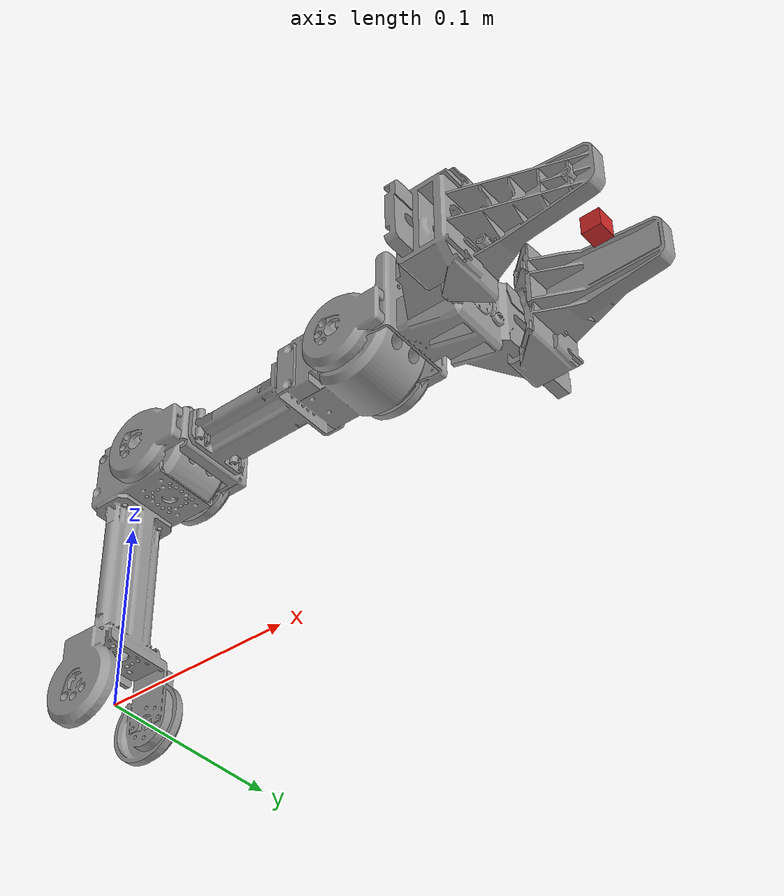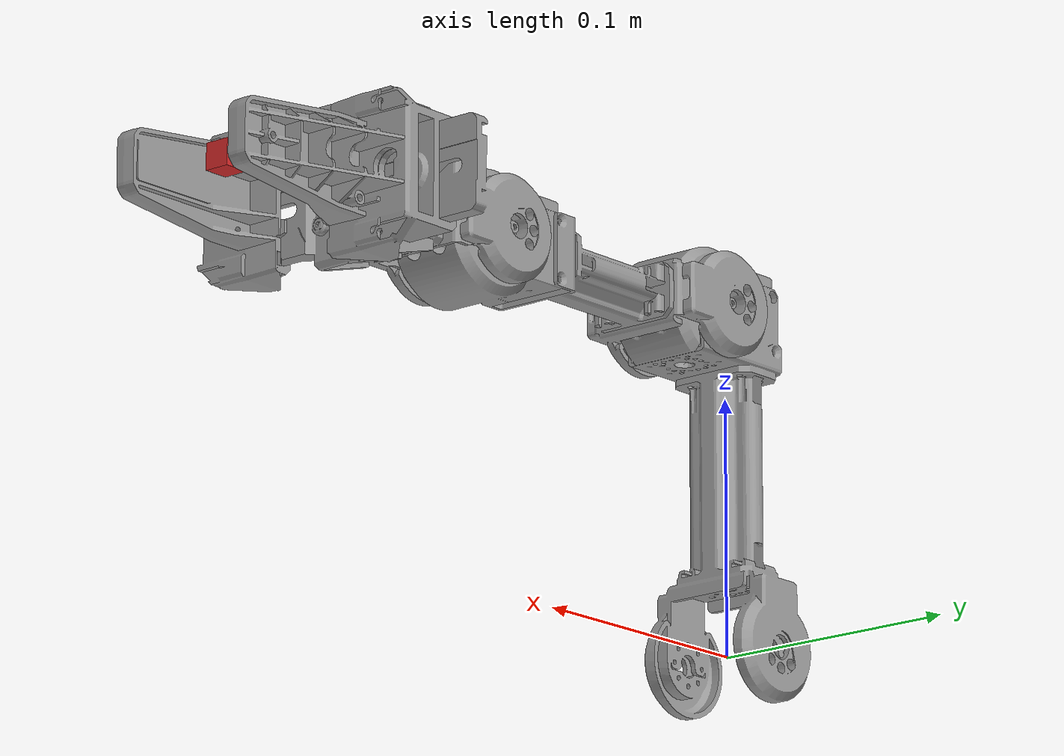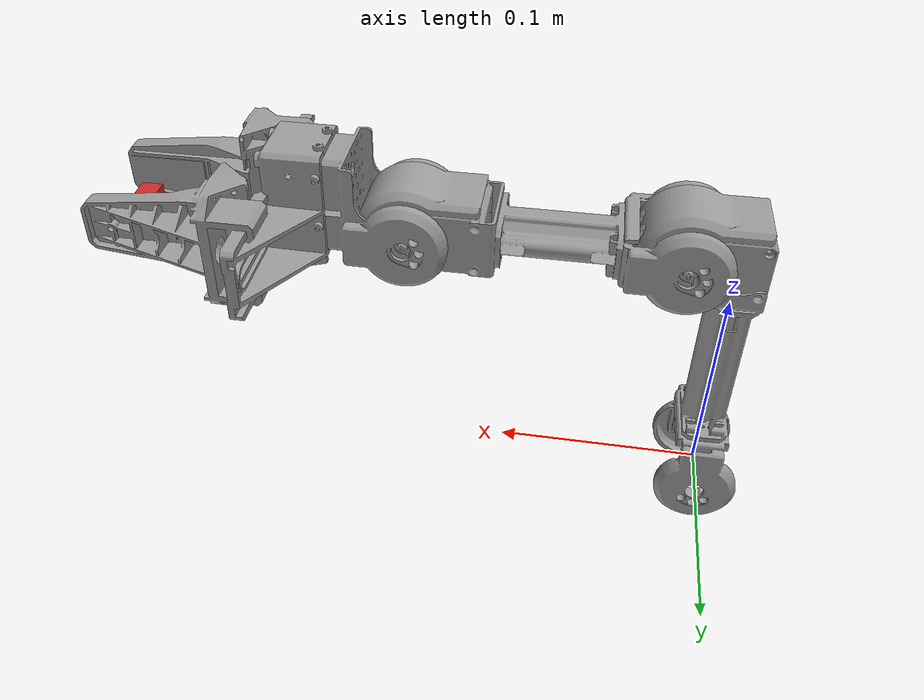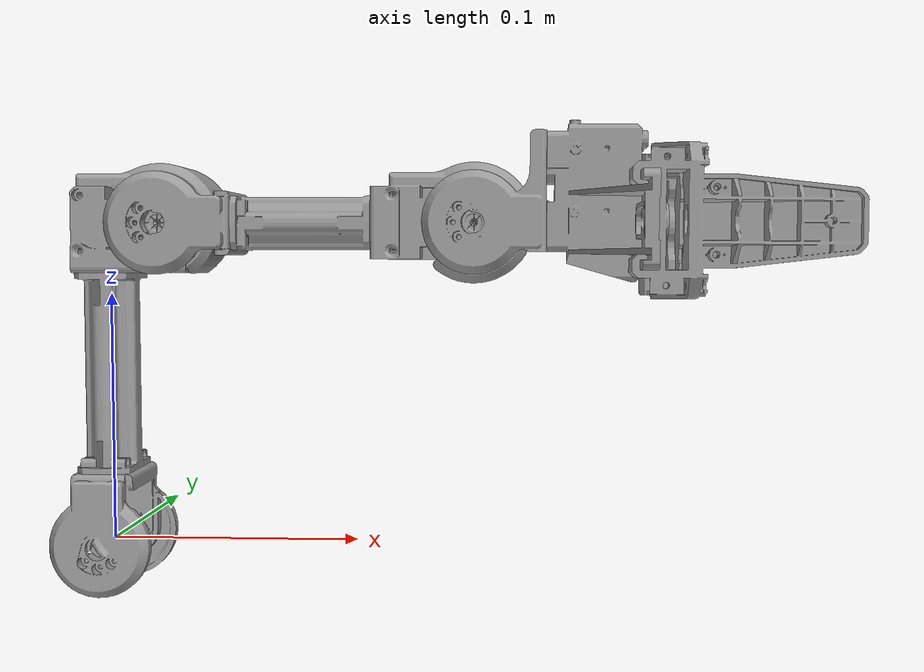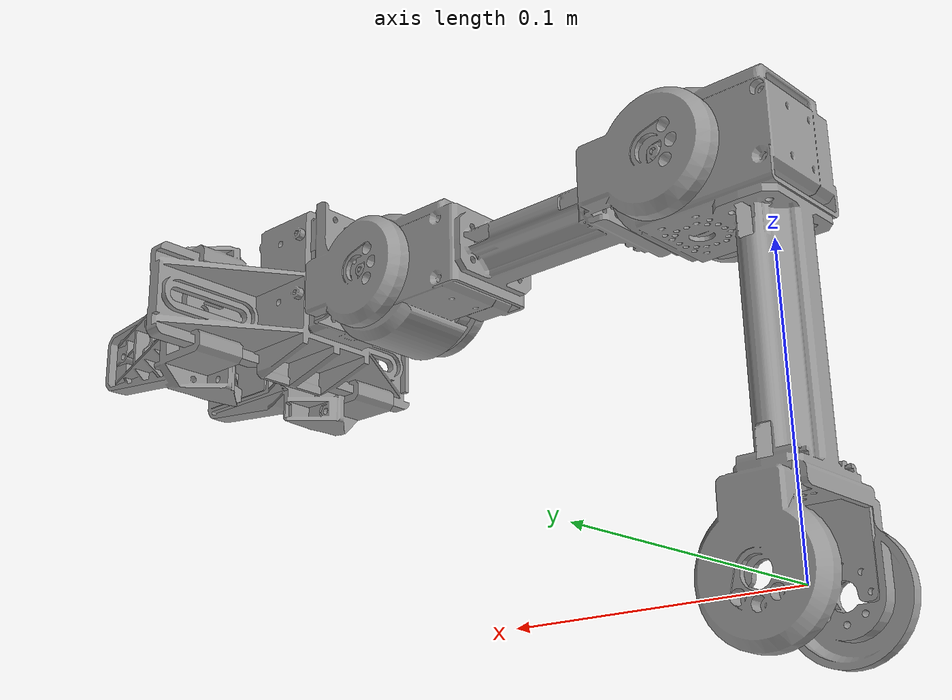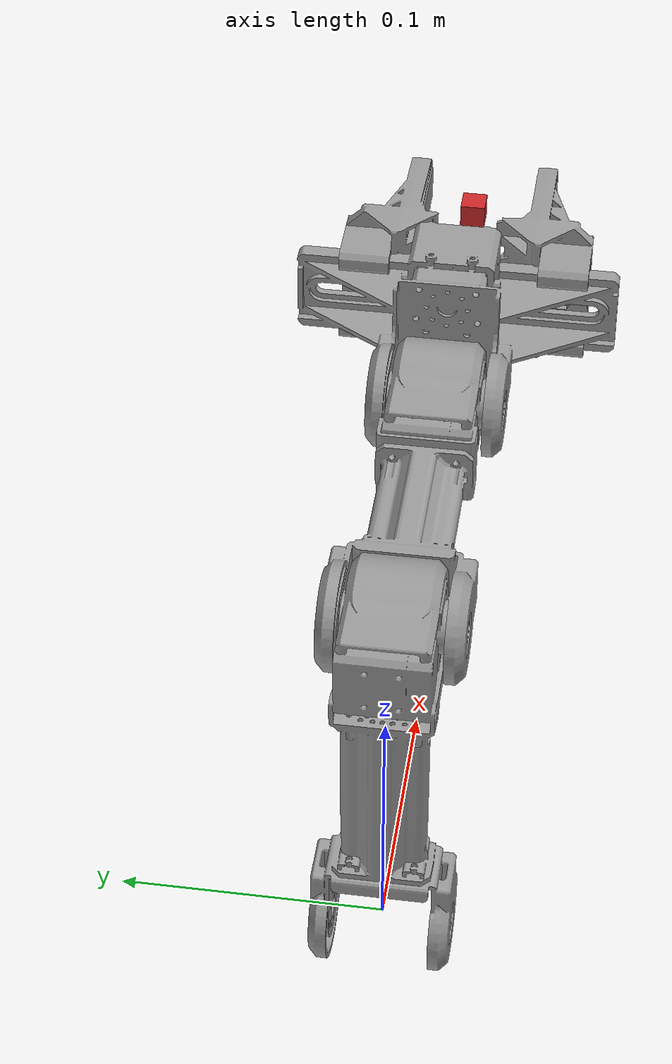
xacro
<?xml version="1.0"?>
<!-- Open_Manipulator Chain -->
<robot xmlns:xacro="http://ros.org/wiki/xacro">

  <!--  Link 3 -->
  <link name="link3">
    <visual>
      <origin xyz="0 0 0" rpy="0 0 0"/>
      <geometry>
        <mesh filename="package://open_manipulator_description/meshes/chain_link3.stl" scale="0.001 0.001 0.001"/>
      </geometry>
      <material name="grey"/>
    </visual>

    <collision>
      <origin xyz="0 0 0" rpy="0 0 0"/>
      <geometry>
        <mesh filename="package://open_manipulator_description/meshes/chain_link3.stl" scale="0.001 0.001 0.001"/>
      </geometry>
    </collision>

    <inertial>
      <origin xyz="0 0 0" />
      <mass value="0.136" />
      <inertia ixx="0.1" ixy="0.0" ixz="0.0"
               iyy="0.1" iyz="0.0"
               izz="0.1" />
    </inertial>

  </link>

  <!--  Joint 3 -->
  <joint name="joint3" type="revolute">
    <parent link="link3"/>
    <child link="link4"/>
    <origin xyz="0.024 0 0.128" rpy="0 0 0"/>
    <axis xyz="0 1 0"/>
    <limit velocity="4.8" effort="1000" lower="${-pi*0.3}" upper="${pi*0.44}" />
  </joint>

  <!--  Link 4 -->
  <link name="link4">
    <visual>
      <origin xyz="0 0 0" rpy="0 0 0"/>
      <geometry>
        <mesh filename="package://open_manipulator_description/meshes/chain_link4.stl" scale="0.001 0.001 0.001"/>
      </geometry>
      <material name="grey"/>
    </visual>

    <collision>
      <origin xyz="0 0 0" rpy="0 0 0"/>
      <geometry>
        <mesh filename="package://open_manipulator_description/meshes/chain_link4.stl" scale="0.001 0.001 0.001"/>
      </geometry>
    </collision>

    <inertial>
      <origin xyz="0 0 0" />
      <mass value="0.131" />
      <inertia ixx="0.1" ixy="0.0" ixz="0.0"
               iyy="0.1" iyz="0.0"
               izz="0.1" />
    </inertial>

  </link>

  <!--  Joint 4 -->
  <joint name="joint4" type="revolute">
    <parent link="link4"/>
    <child link="link5"/>
    <origin xyz="0.124 0.0 0.0" rpy="0 0 0"/>
    <axis xyz="0 1 0"/>
    <limit velocity="4.8" effort="1000" lower="${-pi*0.57}" upper="${pi*0.65}" />
  </joint>

  <!--  Link 5 -->
  <link name="link5">
    <visual>
      <origin xyz="0 0 0" rpy="0 0 0"/>
      <geometry>
        <mesh filename="package://open_manipulator_description/meshes/chain_link5.stl" scale="0.001 0.001 0.001"/>
      </geometry>
      <material name="grey"/>
    </visual>

    <collision>
      <origin xyz="0 0 0" rpy="0 0 0"/>
      <geometry>
        <mesh filename="package://open_manipulator_description/meshes/chain_link5.stl" scale="0.001 0.001 0.001"/>
      </geometry>
    </collision>

    <inertial>
      <origin xyz="0 0 0" />
      <mass value="0.141" />
      <inertia ixx="0.1" ixy="0.0" ixz="0.0"
               iyy="0.1" iyz="0.0"
               izz="0.1" />
    </inertial>

  </link>

  <!--  Gripper joint -->
  <joint name="gripper" type="prismatic">
    <parent link="link5"/>
    <child link="gripper_link"/>
    <origin xyz="0.0536 0.0 0.0" rpy="0 0 0"/>
    <axis xyz="0 1 0"/>
    <limit velocity="4.8" effort="100" lower="-0.010" upper="0.019" />
  </joint>

  <!--  Gripper link -->

  <link name="gripper_link">
    <visual>
      <origin xyz="0.028 0.0246 0" rpy="0 0 0"/>
      <geometry>
        <mesh filename="package://open_manipulator_description/meshes/chain_link_grip_l.stl" scale="0.001 0.001 0.001"/>
      </geometry>
      <material name="grey"/>
    </visual>

    <collision>
      <origin xyz="0.028 0.0246 0" rpy="0 0 0"/>
      <geometry>
        <mesh filename="package://open_manipulator_description/meshes/chain_link_grip_l.stl" scale="0.001 0.001 0.001"/>
      </geometry>
    </collision>

    <inertial>
      <origin xyz="0 0 0" />
      <mass value="0.017" />
      <inertia ixx="0.1" ixy="0.0" ixz="0.0"
               iyy="0.1" iyz="0.0"
               izz="0.1" />
    </inertial>

  </link>

  <!--  Gripper joint sub -->
  <joint name="gripper_sub" type="prismatic">
    <parent link="link5"/>
    <child link="gripper_link_sub"/>
    <origin xyz="0.0536 0.0 0" rpy="0 0 0"/>
    <axis xyz="0 -1 0"/>
    <limit velocity="4.8" effort="100" lower="-0.010" upper="0.019" />
    <mimic joint="gripper" multiplier="1"/>
  </joint>

  <!--  Gripper link sub -->
  <link name="gripper_link_sub">
    <visual>
      <origin xyz="0.028 -0.0246 0" rpy="0 0 0"/>
      <geometry>
        <mesh filename="package://open_manipulator_description/meshes/chain_link_grip_r.stl" scale="0.001 0.001 0.001"/>
      </geometry>
      <material name="grey"/>
    </visual>

    <collision>
      <origin xyz="0.028 -0.0246 0" rpy="0 0 0"/>
      <geometry>
        <mesh filename="package://open_manipulator_description/meshes/chain_link_grip_r.stl" scale="0.001 0.001 0.001"/>
      </geometry>
    </collision>

    <inertial>
      <origin xyz="0 0 0" />
      <mass value="0.017" />
      <inertia ixx="0.1" ixy="0.0" ixz="0.0"
               iyy="0.1" iyz="0.0"
               izz="0.1" />
    </inertial>
  </link>

  <!-- end effector joint -->
  <joint name="end_effector_joint" type="fixed">
    <origin xyz="0.126 0.0 0.0" rpy="0 0 0"/>
    <parent link="link5"/>
    <child link="end_effector_link"/>
  </joint>

  <!-- end effector link -->
  <link name="end_effector_link">
    <visual>
      <origin xyz="0 0 0" rpy="0 0 0"/>
      <geometry>
        <box size="0.01 0.01 0.01" />
      </geometry>
      <material name="red"/>
     </visual>

    <inertial>
      <origin xyz="0 0 0" />
      <mass value="1.0e-03" />
      <inertia ixx="1.0e-03" ixy="0.0" ixz="0.0"
               iyy="1.0e-03" iyz="0.0"
               izz="1.0e-03" />
    </inertial>
  </link>

  <!-- Realsense Camera Joint Position -->

</robot>
